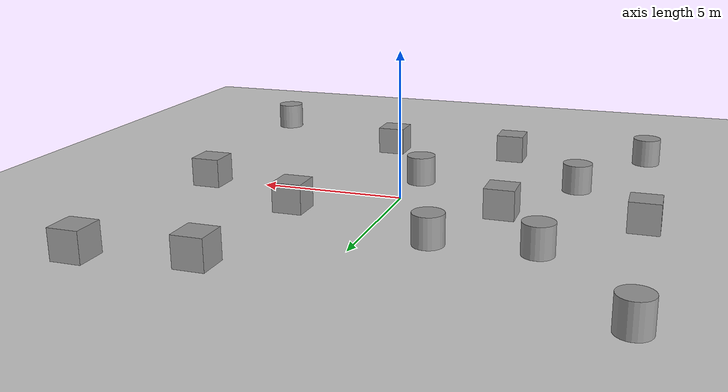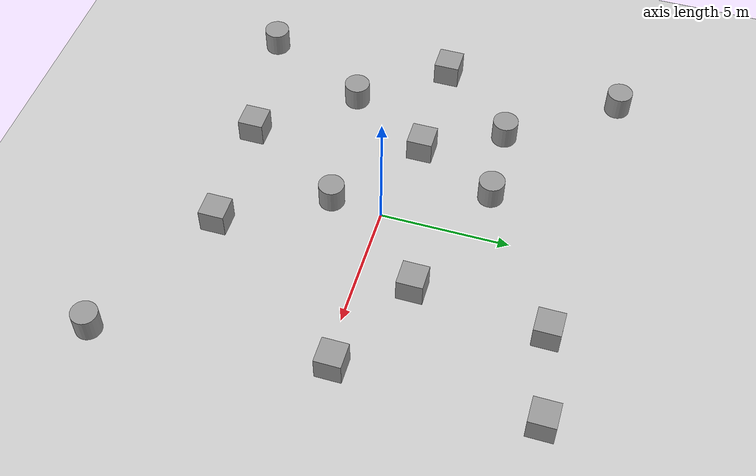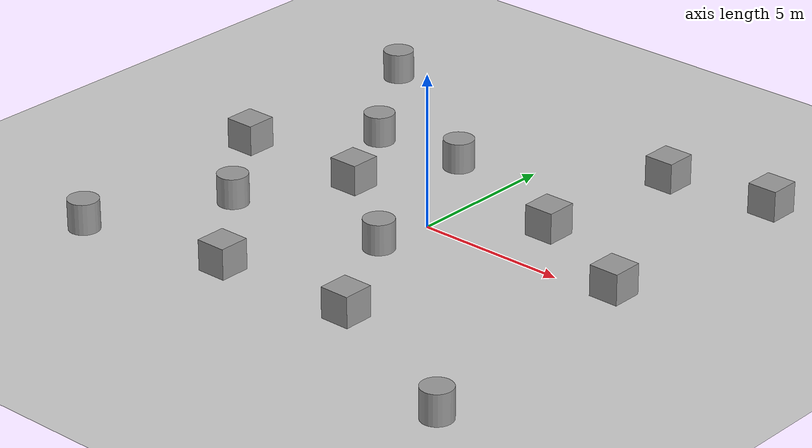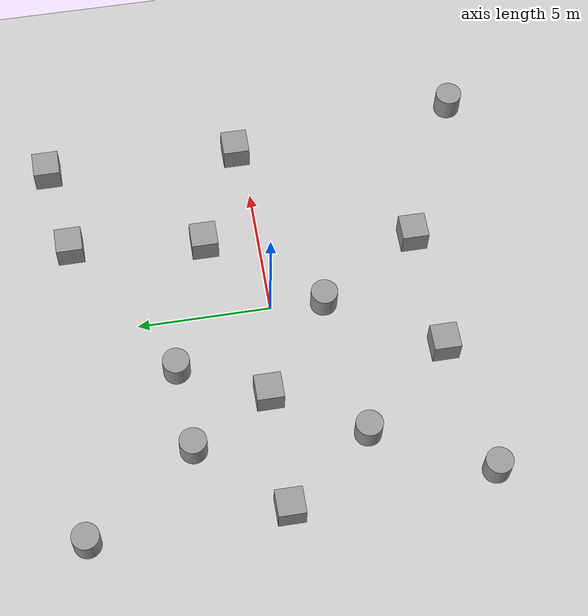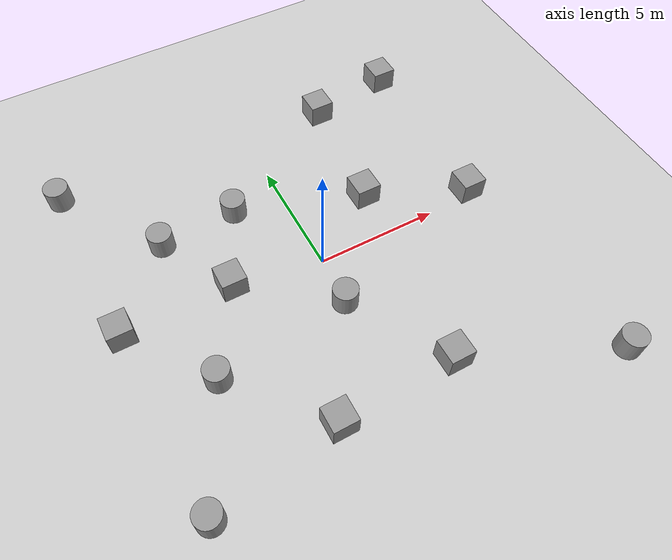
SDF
<sdf version="1.7">
 <world name="default">
  <light name="sun" type="directional">
   <pose>0 0 10 0 -0 0</pose>
   <diffuse>0.8 0.8 0.8 1</diffuse>
   <specular>0.2 0.2 0.2 1</specular>
   <attenuation>
    <range>1000</range>
    <constant>0.9</constant>
    <linear>0.01</linear>
    <quadratic>0.001</quadratic>
   </attenuation>
   <direction>-0.5 0.1 -0.9</direction>
   <spot><inner_angle>0</inner_angle><outer_angle>0</outer_angle><falloff>0</falloff></spot>
  </light>
  <model name="ground_plane">
   <static>1</static>
   <link name="link">
    <collision name="collision">
     <geometry><plane><normal>0 0 1</normal><size>100 100</size></plane></geometry>
     <surface><friction><ode><mu>100</mu><mu2>50</mu2></ode></friction></surface>
    </collision>
    <visual name="visual">
     <cast_shadows>0</cast_shadows>
     <geometry><plane><normal>0 0 1</normal><size>100 100</size></plane></geometry>
     <material>
      <script><uri>file://media/materials/scripts/gazebo.material</uri><name>Gazebo/Grey</name></script>
     </material>
    </visual>
   </link>
  </model>
  <gravity>0 0 -9.8</gravity>
  <magnetic_field>6e-06 2.3e-05 -4.2e-05</magnetic_field>
  <atmosphere type="adiabatic"/>
  <physics type="ode">
   <max_step_size>0.001</max_step_size>
   <real_time_factor>1</real_time_factor>
   <real_time_update_rate>1000</real_time_update_rate>
  </physics>
  <scene><ambient>0.4 0.4 0.4 1</ambient><background>0.7 0.7 0.7 1</background><shadows>1</shadows></scene>
  <spherical_coordinates>
   <surface_model>EARTH_WGS84</surface_model>
   <latitude_deg>0</latitude_deg>
   <longitude_deg>0</longitude_deg>
   <elevation>0</elevation>
   <heading_deg>0</heading_deg>
  </spherical_coordinates>
  <model name="unit_cylinder">
   <pose>-5.24789 3.60722 0.499993 -3e-06 3e-06 0</pose>
   <link name="link">
    <inertial>
     <mass>1</mass>
     <inertia><ixx>0.145833</ixx><ixy>0</ixy><ixz>0</ixz><iyy>0.145833</iyy><iyz>0</iyz><izz>0.125</izz></inertia>
    </inertial>
    <collision name="collision">
     <geometry><cylinder><radius>0.5</radius><length>1</length></cylinder></geometry>
    </collision>
    <visual name="visual">
     <geometry><cylinder><radius>0.5</radius><length>1</length></cylinder></geometry>
     <material>
      <script><name>Gazebo/Grey</name><uri>file://media/materials/scripts/gazebo.material</uri></script>
     </material>
    </visual>
   </link>
  </model>
  <model name="unit_cylinder_0">
   <pose>-2.06575 3.79577 0.499992 -3e-06 3e-06 0</pose>
   <link name="link">
    <inertial>
     <mass>1</mass>
     <inertia><ixx>0.145833</ixx><ixy>0</ixy><ixz>0</ixz><iyy>0.145833</iyy><iyz>0</iyz><izz>0.125</izz></inertia>
    </inertial>
    <collision name="collision">
     <geometry><cylinder><radius>0.5</radius><length>1</length></cylinder></geometry>
    </collision>
    <visual name="visual">
     <geometry><cylinder><radius>0.5</radius><length>1</length></cylinder></geometry>
     <material>
      <script><name>Gazebo/Grey</name><uri>file://media/materials/scripts/gazebo.material</uri></script>
     </material>
    </visual>
   </link>
  </model>
  <model name="unit_box">
   <pose>-3.58677 0.624143 0.499995 0 1e-05 0</pose>
   <link name="link">
    <inertial>
     <mass>1</mass>
     <inertia>
      <ixx>0.166667</ixx>
      <ixy>0</ixy>
      <ixz>0</ixz>
      <iyy>0.166667</iyy>
      <iyz>0</iyz>
      <izz>0.166667</izz>
     </inertia>
    </inertial>
    <collision name="collision"><geometry><box><size>1 1 1</size></box></geometry></collision>
    <visual name="visual">
     <geometry><box><size>1 1 1</size></box></geometry>
     <material>
      <script><name>Gazebo/Grey</name><uri>file://media/materials/scripts/gazebo.material</uri></script>
     </material>
    </visual>
   </link>
  </model>
  <model name="unit_box_0">
   <pose>-8.0046 0.580642 0.499995 -1e-05 -0 -0</pose>
   <link name="link">
    <inertial>
     <mass>1</mass>
     <inertia>
      <ixx>0.166667</ixx>
      <ixy>0</ixy>
      <ixz>0</ixz>
      <iyy>0.166667</iyy>
      <iyz>0</iyz>
      <izz>0.166667</izz>
     </inertia>
    </inertial>
    <collision name="collision"><geometry><box><size>1 1 1</size></box></geometry></collision>
    <visual name="visual">
     <geometry><box><size>1 1 1</size></box></geometry>
     <material>
      <script><name>Gazebo/Grey</name><uri>file://media/materials/scripts/gazebo.material</uri></script>
     </material>
    </visual>
   </link>
  </model>
  <model name="unit_cylinder_1">
   <pose>-5.55459 -2.67352 0.499998 3e-06 -3e-06 0</pose>
   <link name="link">
    <inertial>
     <mass>1</mass>
     <inertia><ixx>0.145833</ixx><ixy>0</ixy><ixz>0</ixz><iyy>0.145833</iyy><iyz>0</iyz><izz>0.125</izz></inertia>
    </inertial>
    <collision name="collision">
     <geometry><cylinder><radius>0.5</radius><length>1</length></cylinder></geometry>
    </collision>
    <visual name="visual">
     <geometry><cylinder><radius>0.5</radius><length>1</length></cylinder></geometry>
     <material>
      <script><name>Gazebo/Grey</name><uri>file://media/materials/scripts/gazebo.material</uri></script>
     </material>
    </visual>
   </link>
  </model>
  <model name="unit_cylinder_2">
   <pose>-8.14213 7.70629 0.499998 3e-06 -3e-06 0</pose>
   <link name="link">
    <inertial>
     <mass>1</mass>
     <inertia><ixx>0.145833</ixx><ixy>0</ixy><ixz>0</ixz><iyy>0.145833</iyy><iyz>0</iyz><izz>0.125</izz></inertia>
    </inertial>
    <collision name="collision">
     <geometry><cylinder><radius>0.5</radius><length>1</length></cylinder></geometry>
    </collision>
    <visual name="visual">
     <geometry><cylinder><radius>0.5</radius><length>1</length></cylinder></geometry>
     <material>
      <script><name>Gazebo/Grey</name><uri>file://media/materials/scripts/gazebo.material</uri></script>
     </material>
    </visual>
   </link>
  </model>
  <model name="unit_cylinder_3">
   <pose>-7.65269 -6.90629 0.499998 3e-06 -4e-06 0</pose>
   <link name="link">
    <inertial>
     <mass>1</mass>
     <inertia><ixx>0.145833</ixx><ixy>0</ixy><ixz>0</ixz><iyy>0.145833</iyy><iyz>0</iyz><izz>0.125</izz></inertia>
    </inertial>
    <collision name="collision">
     <geometry><cylinder><radius>0.5</radius><length>1</length></cylinder></geometry>
    </collision>
    <visual name="visual">
     <geometry><cylinder><radius>0.5</radius><length>1</length></cylinder></geometry>
     <material>
      <script><name>Gazebo/Grey</name><uri>file://media/materials/scripts/gazebo.material</uri></script>
     </material>
    </visual>
   </link>
  </model>
  <model name="unit_box_1">
   <pose>-2.61568 -6.06729 0.499995 -1e-05 -0 -0</pose>
   <link name="link">
    <inertial>
     <mass>1</mass>
     <inertia>
      <ixx>0.166667</ixx>
      <ixy>0</ixy>
      <ixz>0</ixz>
      <iyy>0.166667</iyy>
      <iyz>0</iyz>
      <izz>0.166667</izz>
     </inertia>
    </inertial>
    <collision name="collision"><geometry><box><size>1 1 1</size></box></geometry></collision>
    <visual name="visual">
     <geometry><box><size>1 1 1</size></box></geometry>
     <material>
      <script><name>Gazebo/Grey</name><uri>file://media/materials/scripts/gazebo.material</uri></script>
     </material>
    </visual>
   </link>
  </model>
  <model name="unit_box_2">
   <pose>3.56859 7.16088 0.499995 0 1e-05 0</pose>
   <link name="link">
    <inertial>
     <mass>1</mass>
     <inertia>
      <ixx>0.166667</ixx>
      <ixy>0</ixy>
      <ixz>0</ixz>
      <iyy>0.166667</iyy>
      <iyz>0</iyz>
      <izz>0.166667</izz>
     </inertia>
    </inertial>
    <collision name="collision"><geometry><box><size>1 1 1</size></box></geometry></collision>
    <visual name="visual">
     <geometry><box><size>1 1 1</size></box></geometry>
     <material>
      <script><name>Gazebo/Grey</name><uri>file://media/materials/scripts/gazebo.material</uri></script>
     </material>
    </visual>
   </link>
  </model>
  <model name="unit_box_3">
   <pose>3.01651 2.07725 0.499995 -1e-05 -0 -0</pose>
   <link name="link">
    <inertial>
     <mass>1</mass>
     <inertia>
      <ixx>0.166667</ixx>
      <ixy>0</ixy>
      <ixz>0</ixz>
      <iyy>0.166667</iyy>
      <iyz>0</iyz>
      <izz>0.166667</izz>
     </inertia>
    </inertial>
    <collision name="collision"><geometry><box><size>1 1 1</size></box></geometry></collision>
    <visual name="visual">
     <geometry><box><size>1 1 1</size></box></geometry>
     <material>
      <script><name>Gazebo/Grey</name><uri>file://media/materials/scripts/gazebo.material</uri></script>
     </material>
    </visual>
   </link>
  </model>
  <model name="unit_cylinder_4">
   <pose>-0.12352 -2.01503 0.499998 3e-06 4e-06 -0</pose>
   <link name="link">
    <inertial>
     <mass>1</mass>
     <inertia><ixx>0.145833</ixx><ixy>0</ixy><ixz>0</ixz><iyy>0.145833</iyy><iyz>0</iyz><izz>0.125</izz></inertia>
    </inertial>
    <collision name="collision">
     <geometry><cylinder><radius>0.5</radius><length>1</length></cylinder></geometry>
    </collision>
    <visual name="visual">
     <geometry><cylinder><radius>0.5</radius><length>1</length></cylinder></geometry>
     <material>
      <script><name>Gazebo/Grey</name><uri>file://media/materials/scripts/gazebo.material</uri></script>
     </material>
    </visual>
   </link>
  </model>
  <model name="unit_box_4">
   <pose>2.1213 -5.85487 0.499995 -1e-05 -0 -0</pose>
   <link name="link">
    <inertial>
     <mass>1</mass>
     <inertia>
      <ixx>0.166667</ixx>
      <ixy>0</ixy>
      <ixz>0</ixz>
      <iyy>0.166667</iyy>
      <iyz>0</iyz>
      <izz>0.166667</izz>
     </inertia>
    </inertial>
    <collision name="collision"><geometry><box><size>1 1 1</size></box></geometry></collision>
    <visual name="visual">
     <geometry><box><size>1 1 1</size></box></geometry>
     <material>
      <script><name>Gazebo/Grey</name><uri>file://media/materials/scripts/gazebo.material</uri></script>
     </material>
    </visual>
   </link>
  </model>
  <model name="unit_box_5">
   <pose>7.09718 7.70297 0.499995 0 1e-05 0</pose>
   <link name="link">
    <inertial>
     <mass>1</mass>
     <inertia>
      <ixx>0.166667</ixx>
      <ixy>0</ixy>
      <ixz>0</ixz>
      <iyy>0.166667</iyy>
      <iyz>0</iyz>
      <izz>0.166667</izz>
     </inertia>
    </inertial>
    <collision name="collision"><geometry><box><size>1 1 1</size></box></geometry></collision>
    <visual name="visual">
     <geometry><box><size>1 1 1</size></box></geometry>
     <material>
      <script><name>Gazebo/Grey</name><uri>file://media/materials/scripts/gazebo.material</uri></script>
     </material>
    </visual>
   </link>
  </model>
  <model name="unit_box_6">
   <pose>6.94858 0.293526 0.499995 -1e-05 -0 0</pose>
   <link name="link">
    <inertial>
     <mass>1</mass>
     <inertia>
      <ixx>0.166667</ixx>
      <ixy>0</ixy>
      <ixz>0</ixz>
      <iyy>0.166667</iyy>
      <iyz>0</iyz>
      <izz>0.166667</izz>
     </inertia>
    </inertial>
    <collision name="collision"><geometry><box><size>1 1 1</size></box></geometry></collision>
    <visual name="visual">
     <geometry><box><size>1 1 1</size></box></geometry>
     <material>
      <script><name>Gazebo/Grey</name><uri>file://media/materials/scripts/gazebo.material</uri></script>
     </material>
    </visual>
   </link>
  </model>
  <model name="unit_cylinder_5">
   <pose>7.8977 -8.46669 0.499997 3e-06 4e-06 -0</pose>
   <link name="link">
    <inertial>
     <mass>1</mass>
     <inertia><ixx>0.145833</ixx><ixy>0</ixy><ixz>0</ixz><iyy>0.145833</iyy><iyz>0</iyz><izz>0.125</izz></inertia>
    </inertial>
    <collision name="collision">
     <geometry><cylinder><radius>0.5</radius><length>1</length></cylinder></geometry>
    </collision>
    <visual name="visual">
     <geometry><cylinder><radius>0.5</radius><length>1</length></cylinder></geometry>
     <material>
      <script><name>Gazebo/Grey</name><uri>file://media/materials/scripts/gazebo.material</uri></script>
     </material>
    </visual>
   </link>
  </model>
 </world>
</sdf>
